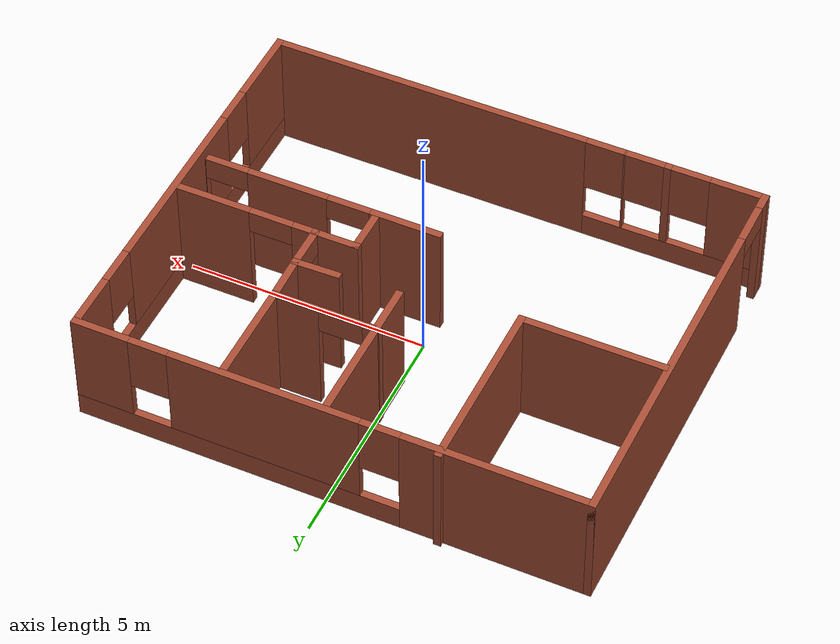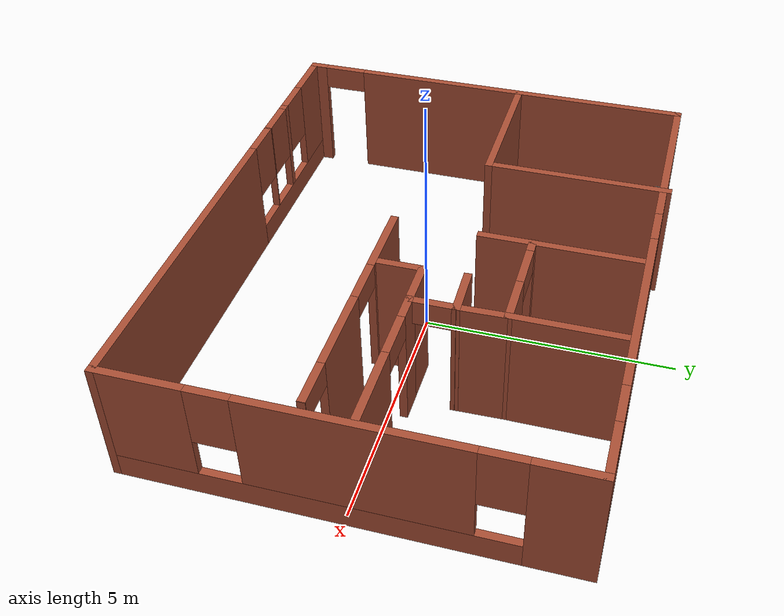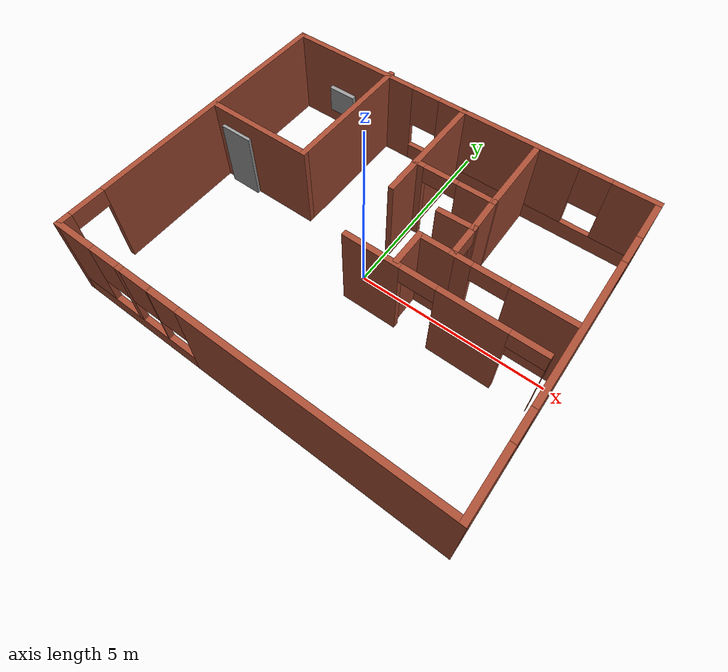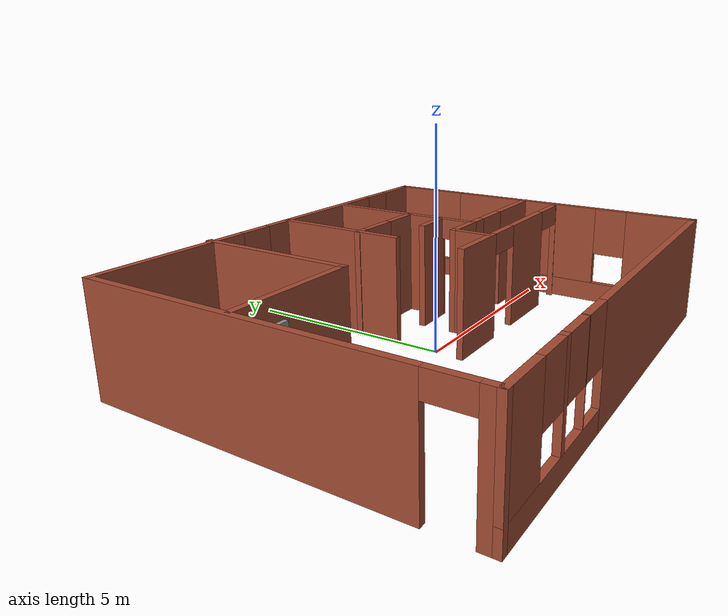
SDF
<?xml version='1.0'?>
<sdf version='1.7'>
  <model name='map2'>
    <pose>-0.063504 0.059029 0 0 -0 0</pose>
    <link name='Door_1'>
      <collision name='Door_1_Collision'>
        <geometry>
          <box>
            <size>0.9 0.17 2</size>
          </box>
        </geometry>
        <pose>0 0 1 0 -0 0</pose>
      </collision>
      <visual name='Door_1_Visual'>
        <pose>0 0 1 0 -0 0</pose>
        <geometry>
          <box>
            <size>0.9 0.17 2</size>
          </box>
        </geometry>
        <material>
          <script>
            <uri>file://media/materials/scripts/gazebo.material</uri>
            <name>Gazebo/Grey</name>
          </script>
        </material>
      </visual>
      <pose>-4.41169 0.543495 0 0 -0 0</pose>
    </link>
    <link name='Wall_0'>
      <pose>0 4.12874 0 0 -0 0</pose>
      <visual name='Wall_0_Visual_0'>
        <pose>-3.34231 0 1.25 0 -0 0</pose>
        <geometry>
          <box>
            <size>3.81538 0.15 2.5</size>
          </box>
        </geometry>
        <material>
          <script>
            <uri>file://media/materials/scripts/gazebo.material</uri>
            <name>Gazebo/Bricks</name>
          </script>
          <ambient>1 1 1 1</ambient>
        </material>
        <meta>
          <layer>0</layer>
        </meta>
      </visual>
      <collision name='Wall_0_Collision_0'>
        <geometry>
          <box>
            <size>3.81538 0.15 2.5</size>
          </box>
        </geometry>
        <pose>-3.34231 0 1.25 0 -0 0</pose>
      </collision>
      <visual name='Wall_0_Visual_1'>
        <pose>1.90769 0 0.25 0 -0 0</pose>
        <geometry>
          <box>
            <size>6.68462 0.15 0.5</size>
          </box>
        </geometry>
        <material>
          <script>
            <uri>file://media/materials/scripts/gazebo.material</uri>
            <name>Gazebo/Bricks</name>
          </script>
          <ambient>1 1 1 1</ambient>
        </material>
        <meta>
          <layer>0</layer>
        </meta>
      </visual>
      <collision name='Wall_0_Collision_1'>
        <geometry>
          <box>
            <size>6.68462 0.15 0.5</size>
          </box>
        </geometry>
        <pose>1.90769 0 0.25 0 -0 0</pose>
      </collision>
      <visual name='Wall_0_Visual_2'>
        <pose>1.31313 0 1.5 0 -0 0</pose>
        <geometry>
          <box>
            <size>3.89551 0.15 2</size>
          </box>
        </geometry>
        <material>
          <script>
            <uri>file://media/materials/scripts/gazebo.material</uri>
            <name>Gazebo/Bricks</name>
          </script>
          <ambient>1 1 1 1</ambient>
        </material>
        <meta>
          <layer>0</layer>
        </meta>
      </visual>
      <collision name='Wall_0_Collision_2'>
        <geometry>
          <box>
            <size>3.89551 0.15 2</size>
          </box>
        </geometry>
        <pose>1.31313 0 1.5 0 -0 0</pose>
      </collision>
      <visual name='Wall_0_Visual_3'>
        <pose>4.65545 0 1.5 0 -0 0</pose>
        <geometry>
          <box>
            <size>1.18911 0.15 2</size>
          </box>
        </geometry>
        <material>
          <script>
            <uri>file://media/materials/scripts/gazebo.material</uri>
            <name>Gazebo/Bricks</name>
          </script>
          <ambient>1 1 1 1</ambient>
        </material>
        <meta>
          <layer>0</layer>
        </meta>
      </visual>
      <collision name='Wall_0_Collision_3'>
        <geometry>
          <box>
            <size>1.18911 0.15 2</size>
          </box>
        </geometry>
        <pose>4.65545 0 1.5 0 -0 0</pose>
      </collision>
      <visual name='Wall_0_Visual_4'>
        <pose>-1.03462 0 1.9 0 -0 0</pose>
        <geometry>
          <box>
            <size>0.8 0.15 1.2</size>
          </box>
        </geometry>
        <material>
          <script>
            <uri>file://media/materials/scripts/gazebo.material</uri>
            <name>Gazebo/Bricks</name>
          </script>
          <ambient>1 1 1 1</ambient>
        </material>
        <meta>
          <layer>0</layer>
        </meta>
      </visual>
      <collision name='Wall_0_Collision_4'>
        <geometry>
          <box>
            <size>0.8 0.15 1.2</size>
          </box>
        </geometry>
        <pose>-1.03462 0 1.9 0 -0 0</pose>
      </collision>
      <visual name='Wall_0_Visual_5'>
        <pose>3.66089 0 1.9 0 -0 0</pose>
        <geometry>
          <box>
            <size>0.8 0.15 1.2</size>
          </box>
        </geometry>
        <material>
          <script>
            <uri>file://media/materials/scripts/gazebo.material</uri>
            <name>Gazebo/Bricks</name>
          </script>
          <ambient>1 1 1 1</ambient>
        </material>
        <meta>
          <layer>0</layer>
        </meta>
      </visual>
      <collision name='Wall_0_Collision_5'>
        <geometry>
          <box>
            <size>0.8 0.15 1.2</size>
          </box>
        </geometry>
        <pose>3.66089 0 1.9 0 -0 0</pose>
      </collision>
    </link>
    <link name='Wall_1'>
      <pose>5.175 -0.046261 0 0 -0 -1.5708</pose>
      <visual name='Wall_1_Visual_0'>
        <pose>-3.63762 0 1.25 0 -0 0</pose>
        <geometry>
          <box>
            <size>1.22475 0.15 2.5</size>
          </box>
        </geometry>
        <material>
          <script>
            <uri>file://media/materials/scripts/gazebo.material</uri>
            <name>Gazebo/Bricks</name>
          </script>
          <ambient>1 1 1 1</ambient>
        </material>
        <meta>
          <layer>0</layer>
        </meta>
      </visual>
      <collision name='Wall_1_Collision_0'>
        <geometry>
          <box>
            <size>1.22475 0.15 2.5</size>
          </box>
        </geometry>
        <pose>-3.63762 0 1.25 0 -0 0</pose>
      </collision>
      <visual name='Wall_1_Visual_1'>
        <pose>0.612375 0 0.25 0 -0 0</pose>
        <geometry>
          <box>
            <size>7.27525 0.15 0.5</size>
          </box>
        </geometry>
        <material>
          <script>
            <uri>file://media/materials/scripts/gazebo.material</uri>
            <name>Gazebo/Bricks</name>
          </script>
          <ambient>1 1 1 1</ambient>
        </material>
        <meta>
          <layer>0</layer>
        </meta>
      </visual>
      <collision name='Wall_1_Collision_1'>
        <geometry>
          <box>
            <size>7.27525 0.15 0.5</size>
          </box>
        </geometry>
        <pose>0.612375 0 0.25 0 -0 0</pose>
      </collision>
      <visual name='Wall_1_Visual_2'>
        <pose>-0.231231 0 1.5 0 -0 0</pose>
        <geometry>
          <box>
            <size>3.98804 0.15 2</size>
          </box>
        </geometry>
        <material>
          <script>
            <uri>file://media/materials/scripts/gazebo.material</uri>
            <name>Gazebo/Bricks</name>
          </script>
          <ambient>1 1 1 1</ambient>
        </material>
        <meta>
          <layer>0</layer>
        </meta>
      </visual>
      <collision name='Wall_1_Collision_2'>
        <geometry>
          <box>
            <size>3.98804 0.15 2</size>
          </box>
        </geometry>
        <pose>-0.231231 0 1.5 0 -0 0</pose>
      </collision>
      <visual name='Wall_1_Visual_3'>
        <pose>3.40639 0 1.5 0 -0 0</pose>
        <geometry>
          <box>
            <size>1.68721 0.15 2</size>
          </box>
        </geometry>
        <material>
          <script>
            <uri>file://media/materials/scripts/gazebo.material</uri>
            <name>Gazebo/Bricks</name>
          </script>
          <ambient>1 1 1 1</ambient>
        </material>
        <meta>
          <layer>0</layer>
        </meta>
      </visual>
      <collision name='Wall_1_Collision_3'>
        <geometry>
          <box>
            <size>1.68721 0.15 2</size>
          </box>
        </geometry>
        <pose>3.40639 0 1.5 0 -0 0</pose>
      </collision>
      <visual name='Wall_1_Visual_4'>
        <pose>-2.62525 0 1.9 0 -0 0</pose>
        <geometry>
          <box>
            <size>0.8 0.15 1.2</size>
          </box>
        </geometry>
        <material>
          <script>
            <uri>file://media/materials/scripts/gazebo.material</uri>
            <name>Gazebo/Bricks</name>
          </script>
          <ambient>1 1 1 1</ambient>
        </material>
        <meta>
          <layer>0</layer>
        </meta>
      </visual>
      <collision name='Wall_1_Collision_4'>
        <geometry>
          <box>
            <size>0.8 0.15 1.2</size>
          </box>
        </geometry>
        <pose>-2.62525 0 1.9 0 -0 0</pose>
      </collision>
      <visual name='Wall_1_Visual_5'>
        <pose>2.16279 0 1.9 0 -0 0</pose>
        <geometry>
          <box>
            <size>0.8 0.15 1.2</size>
          </box>
        </geometry>
        <material>
          <script>
            <uri>file://media/materials/scripts/gazebo.material</uri>
            <name>Gazebo/Bricks</name>
          </script>
          <ambient>1 1 1 1</ambient>
        </material>
        <meta>
          <layer>0</layer>
        </meta>
      </visual>
      <collision name='Wall_1_Collision_5'>
        <geometry>
          <box>
            <size>0.8 0.15 1.2</size>
          </box>
        </geometry>
        <pose>2.16279 0 1.9 0 -0 0</pose>
      </collision>
    </link>
    <link name='Wall_11'>
      <collision name='Wall_11_Collision'>
        <geometry>
          <box>
            <size>2.25 0.15 2.5</size>
          </box>
        </geometry>
        <pose>0 0 1.25 0 -0 0</pose>
      </collision>
      <visual name='Wall_11_Visual'>
        <pose>0 0 1.25 0 -0 0</pose>
        <geometry>
          <box>
            <size>2.25 0.15 2.5</size>
          </box>
        </geometry>
        <material>
          <script>
            <uri>file://media/materials/scripts/gazebo.material</uri>
            <name>Gazebo/Bricks</name>
          </script>
          <ambient>1 1 1 1</ambient>
        </material>
        <meta>
          <layer>0</layer>
        </meta>
      </visual>
      <pose>2.1574 3.03248 0 0 -0 -1.5708</pose>
    </link>
    <link name='Wall_12'>
      <pose>1.1074 1.98248 0 0 -0 3.14159</pose>
      <visual name='Wall_12_Visual_0'>
        <pose>-0.618582 0 1.25 0 -0 0</pose>
        <geometry>
          <box>
            <size>1.01284 0.15 2.5</size>
          </box>
        </geometry>
        <material>
          <script>
            <uri>file://media/materials/scripts/gazebo.material</uri>
            <name>Gazebo/Bricks</name>
          </script>
          <ambient>1 1 1 1</ambient>
        </material>
        <meta>
          <layer>0</layer>
        </meta>
      </visual>
      <collision name='Wall_12_Collision_0'>
        <geometry>
          <box>
            <size>1.01284 0.15 2.5</size>
          </box>
        </geometry>
        <pose>-0.618582 0 1.25 0 -0 0</pose>
      </collision>
      <visual name='Wall_12_Visual_1'>
        <pose>0.956418 0 1.25 0 -0 0</pose>
        <geometry>
          <box>
            <size>0.337163 0.15 2.5</size>
          </box>
        </geometry>
        <material>
          <script>
            <uri>file://media/materials/scripts/gazebo.material</uri>
            <name>Gazebo/Bricks</name>
          </script>
          <ambient>1 1 1 1</ambient>
        </material>
        <meta>
          <layer>0</layer>
        </meta>
      </visual>
      <collision name='Wall_12_Collision_1'>
        <geometry>
          <box>
            <size>0.337163 0.15 2.5</size>
          </box>
        </geometry>
        <pose>0.956418 0 1.25 0 -0 0</pose>
      </collision>
      <visual name='Wall_12_Visual_2'>
        <pose>0.337837 0 2.25 0 -0 0</pose>
        <geometry>
          <box>
            <size>0.9 0.15 0.5</size>
          </box>
        </geometry>
        <material>
          <script>
            <uri>file://media/materials/scripts/gazebo.material</uri>
            <name>Gazebo/Bricks</name>
          </script>
          <ambient>1 1 1 1</ambient>
        </material>
        <meta>
          <layer>0</layer>
        </meta>
      </visual>
      <collision name='Wall_12_Collision_2'>
        <geometry>
          <box>
            <size>0.9 0.15 0.5</size>
          </box>
        </geometry>
        <pose>0.337837 0 2.25 0 -0 0</pose>
      </collision>
    </link>
    <link name='Wall_14'>
      <pose>2.47752 -0.705558 0 0 -0 0</pose>
      <visual name='Wall_14_Visual_0'>
        <pose>-1.75071 0 1.25 0 -0 0</pose>
        <geometry>
          <box>
            <size>1.49858 0.15 2.5</size>
          </box>
        </geometry>
        <material>
          <script>
            <uri>file://media/materials/scripts/gazebo.material</uri>
            <name>Gazebo/Bricks</name>
          </script>
          <ambient>1 1 1 1</ambient>
        </material>
        <meta>
          <layer>0</layer>
        </meta>
      </visual>
      <collision name='Wall_14_Collision_0'>
        <geometry>
          <box>
            <size>1.49858 0.15 2.5</size>
          </box>
        </geometry>
        <pose>-1.75071 0 1.25 0 -0 0</pose>
      </collision>
      <visual name='Wall_14_Visual_1'>
        <pose>0.743893 0 1.25 0 -0 0</pose>
        <geometry>
          <box>
            <size>1.69063 0.15 2.5</size>
          </box>
        </geometry>
        <material>
          <script>
            <uri>file://media/materials/scripts/gazebo.material</uri>
            <name>Gazebo/Bricks</name>
          </script>
          <ambient>1 1 1 1</ambient>
        </material>
        <meta>
          <layer>0</layer>
        </meta>
      </visual>
      <collision name='Wall_14_Collision_1'>
        <geometry>
          <box>
            <size>1.69063 0.15 2.5</size>
          </box>
        </geometry>
        <pose>0.743893 0 1.25 0 -0 0</pose>
      </collision>
      <visual name='Wall_14_Visual_2'>
        <pose>2.4946 0 1.25 0 -0 0</pose>
        <geometry>
          <box>
            <size>0.010793 0.15 2.5</size>
          </box>
        </geometry>
        <material>
          <script>
            <uri>file://media/materials/scripts/gazebo.material</uri>
            <name>Gazebo/Bricks</name>
          </script>
          <ambient>1 1 1 1</ambient>
        </material>
        <meta>
          <layer>0</layer>
        </meta>
      </visual>
      <collision name='Wall_14_Collision_2'>
        <geometry>
          <box>
            <size>0.010793 0.15 2.5</size>
          </box>
        </geometry>
        <pose>2.4946 0 1.25 0 -0 0</pose>
      </collision>
      <visual name='Wall_14_Visual_3'>
        <pose>-0.551421 0 2.25 0 -0 0</pose>
        <geometry>
          <box>
            <size>0.9 0.15 0.5</size>
          </box>
        </geometry>
        <material>
          <script>
            <uri>file://media/materials/scripts/gazebo.material</uri>
            <name>Gazebo/Bricks</name>
          </script>
          <ambient>1 1 1 1</ambient>
        </material>
        <meta>
          <layer>0</layer>
        </meta>
      </visual>
      <collision name='Wall_14_Collision_3'>
        <geometry>
          <box>
            <size>0.9 0.15 0.5</size>
          </box>
        </geometry>
        <pose>-0.551421 0 2.25 0 -0 0</pose>
      </collision>
      <visual name='Wall_14_Visual_4'>
        <pose>2.03921 0 2.25 0 -0 0</pose>
        <geometry>
          <box>
            <size>0.9 0.15 0.5</size>
          </box>
        </geometry>
        <material>
          <script>
            <uri>file://media/materials/scripts/gazebo.material</uri>
            <name>Gazebo/Bricks</name>
          </script>
          <ambient>1 1 1 1</ambient>
        </material>
        <meta>
          <layer>0</layer>
        </meta>
      </visual>
      <collision name='Wall_14_Collision_4'>
        <geometry>
          <box>
            <size>0.9 0.15 0.5</size>
          </box>
        </geometry>
        <pose>2.03921 0 2.25 0 -0 0</pose>
      </collision>
    </link>
    <link name='Wall_16'>
      <pose>2.18053 0.650499 0 0 -0 -1.5708</pose>
      <visual name='Wall_16_Visual_0'>
        <pose>-0.467759 0 1.25 0 -0 0</pose>
        <geometry>
          <box>
            <size>0.064482 0.15 2.5</size>
          </box>
        </geometry>
        <material>
          <script>
            <uri>file://media/materials/scripts/gazebo.material</uri>
            <name>Gazebo/Bricks</name>
          </script>
          <ambient>1 1 1 1</ambient>
        </material>
        <meta>
          <layer>0</layer>
        </meta>
      </visual>
      <collision name='Wall_16_Collision_0'>
        <geometry>
          <box>
            <size>0.064482 0.15 2.5</size>
          </box>
        </geometry>
        <pose>-0.467759 0 1.25 0 -0 0</pose>
      </collision>
      <visual name='Wall_16_Visual_1'>
        <pose>0.482241 0 1.25 0 -0 0</pose>
        <geometry>
          <box>
            <size>0.035518 0.15 2.5</size>
          </box>
        </geometry>
        <material>
          <script>
            <uri>file://media/materials/scripts/gazebo.material</uri>
            <name>Gazebo/Bricks</name>
          </script>
          <ambient>1 1 1 1</ambient>
        </material>
        <meta>
          <layer>0</layer>
        </meta>
      </visual>
      <collision name='Wall_16_Collision_1'>
        <geometry>
          <box>
            <size>0.035518 0.15 2.5</size>
          </box>
        </geometry>
        <pose>0.482241 0 1.25 0 -0 0</pose>
      </collision>
      <visual name='Wall_16_Visual_2'>
        <pose>0.014482 0 2.25 0 -0 0</pose>
        <geometry>
          <box>
            <size>0.9 0.15 0.5</size>
          </box>
        </geometry>
        <material>
          <script>
            <uri>file://media/materials/scripts/gazebo.material</uri>
            <name>Gazebo/Bricks</name>
          </script>
          <ambient>1 1 1 1</ambient>
        </material>
        <meta>
          <layer>0</layer>
        </meta>
      </visual>
      <collision name='Wall_16_Collision_2'>
        <geometry>
          <box>
            <size>0.9 0.15 0.5</size>
          </box>
        </geometry>
        <pose>0.014482 0 2.25 0 -0 0</pose>
      </collision>
    </link>
    <link name='Wall_18'>
      <pose>3.60553 0.225499 0 0 -0 0</pose>
      <visual name='Wall_18_Visual_0'>
        <pose>-1.22489 0 1.25 0 -0 0</pose>
        <geometry>
          <box>
            <size>0.550224 0.15 2.5</size>
          </box>
        </geometry>
        <material>
          <script>
            <uri>file://media/materials/scripts/gazebo.material</uri>
            <name>Gazebo/Bricks</name>
          </script>
          <ambient>1 1 1 1</ambient>
        </material>
        <meta>
          <layer>0</layer>
        </meta>
      </visual>
      <collision name='Wall_18_Collision_0'>
        <geometry>
          <box>
            <size>0.550224 0.15 2.5</size>
          </box>
        </geometry>
        <pose>-1.22489 0 1.25 0 -0 0</pose>
      </collision>
      <visual name='Wall_18_Visual_1'>
        <pose>0.725112 0 1.25 0 -0 0</pose>
        <geometry>
          <box>
            <size>1.54978 0.15 2.5</size>
          </box>
        </geometry>
        <material>
          <script>
            <uri>file://media/materials/scripts/gazebo.material</uri>
            <name>Gazebo/Bricks</name>
          </script>
          <ambient>1 1 1 1</ambient>
        </material>
        <meta>
          <layer>0</layer>
        </meta>
      </visual>
      <collision name='Wall_18_Collision_1'>
        <geometry>
          <box>
            <size>1.54978 0.15 2.5</size>
          </box>
        </geometry>
        <pose>0.725112 0 1.25 0 -0 0</pose>
      </collision>
      <visual name='Wall_18_Visual_2'>
        <pose>-0.499776 0 2.25 0 -0 0</pose>
        <geometry>
          <box>
            <size>0.9 0.15 0.5</size>
          </box>
        </geometry>
        <material>
          <script>
            <uri>file://media/materials/scripts/gazebo.material</uri>
            <name>Gazebo/Bricks</name>
          </script>
          <ambient>1 1 1 1</ambient>
        </material>
        <meta>
          <layer>0</layer>
        </meta>
      </visual>
      <collision name='Wall_18_Collision_2'>
        <geometry>
          <box>
            <size>0.9 0.15 0.5</size>
          </box>
        </geometry>
        <pose>-0.499776 0 2.25 0 -0 0</pose>
      </collision>
    </link>
    <link name='Wall_20'>
      <collision name='Wall_20_Collision'>
        <geometry>
          <box>
            <size>1.05727 0.15 2.5</size>
          </box>
        </geometry>
        <pose>0 0 1.25 0 -0 0</pose>
      </collision>
      <visual name='Wall_20_Visual'>
        <pose>0 0 1.25 0 -0 0</pose>
        <geometry>
          <box>
            <size>1.05727 0.15 2.5</size>
          </box>
        </geometry>
        <material>
          <script>
            <uri>file://media/materials/scripts/gazebo.material</uri>
            <name>Gazebo/Bricks</name>
          </script>
          <ambient>1 1 1 1</ambient>
        </material>
        <meta>
          <layer>0</layer>
        </meta>
      </visual>
      <pose>2.16897 1.52899 0 0 -0 1.59629</pose>
    </link>
    <link name='Wall_22'>
      <collision name='Wall_22_Collision'>
        <geometry>
          <box>
            <size>1.00615 0.15 2.5</size>
          </box>
        </geometry>
        <pose>0 0 1.25 0 -0 0</pose>
      </collision>
      <visual name='Wall_22_Visual'>
        <pose>0 0 1.25 0 -0 0</pose>
        <geometry>
          <box>
            <size>1.00615 0.15 2.5</size>
          </box>
        </geometry>
        <material>
          <script>
            <uri>file://media/materials/scripts/gazebo.material</uri>
            <name>Gazebo/Bricks</name>
          </script>
          <ambient>1 1 1 1</ambient>
        </material>
        <meta>
          <layer>0</layer>
        </meta>
      </visual>
      <pose>1.75262 1.06393 0 0 -0 0.02702</pose>
    </link>
    <link name='Wall_24'>
      <collision name='Wall_24_Collision'>
        <geometry>
          <box>
            <size>1 0.15 2.5</size>
          </box>
        </geometry>
        <pose>0 0 1.25 0 -0 0</pose>
      </collision>
      <visual name='Wall_24_Visual'>
        <pose>0 0 1.25 0 -0 0</pose>
        <geometry>
          <box>
            <size>1 0.15 2.5</size>
          </box>
        </geometry>
        <material>
          <script>
            <uri>file://media/materials/scripts/gazebo.material</uri>
            <name>Gazebo/Bricks</name>
          </script>
          <ambient>1 1 1 1</ambient>
        </material>
        <meta>
          <layer>0</layer>
        </meta>
      </visual>
      <pose>1.75553 0.225499 0 0 -0 3.14159</pose>
    </link>
    <link name='Wall_25'>
      <collision name='Wall_25_Collision'>
        <geometry>
          <box>
            <size>1 0.15 2.5</size>
          </box>
        </geometry>
        <pose>0 0 1.25 0 -0 0</pose>
      </collision>
      <visual name='Wall_25_Visual'>
        <pose>0 0 1.25 0 -0 0</pose>
        <geometry>
          <box>
            <size>1 0.15 2.5</size>
          </box>
        </geometry>
        <material>
          <script>
            <uri>file://media/materials/scripts/gazebo.material</uri>
            <name>Gazebo/Bricks</name>
          </script>
          <ambient>1 1 1 1</ambient>
        </material>
        <meta>
          <layer>0</layer>
        </meta>
      </visual>
      <pose>1.33053 -0.199501 0 0 -0 -1.5708</pose>
    </link>
    <link name='Wall_3'>
      <pose>0 -4.22126 0 0 -0 3.14159</pose>
      <visual name='Wall_3_Visual_0'>
        <pose>-1.87977 0 1.25 0 -0 0</pose>
        <geometry>
          <box>
            <size>6.74045 0.15 2.5</size>
          </box>
        </geometry>
        <material>
          <script>
            <uri>file://media/materials/scripts/gazebo.material</uri>
            <name>Gazebo/Bricks</name>
          </script>
          <ambient>1 1 1 1</ambient>
        </material>
        <meta>
          <layer>0</layer>
        </meta>
      </visual>
      <collision name='Wall_3_Collision_0'>
        <geometry>
          <box>
            <size>6.74045 0.15 2.5</size>
          </box>
        </geometry>
        <pose>-1.87977 0 1.25 0 -0 0</pose>
      </collision>
      <visual name='Wall_3_Visual_1'>
        <pose>3.37023 0 0.25 0 -0 0</pose>
        <geometry>
          <box>
            <size>3.75955 0.15 0.5</size>
          </box>
        </geometry>
        <material>
          <script>
            <uri>file://media/materials/scripts/gazebo.material</uri>
            <name>Gazebo/Bricks</name>
          </script>
          <ambient>1 1 1 1</ambient>
        </material>
        <meta>
          <layer>0</layer>
        </meta>
      </visual>
      <collision name='Wall_3_Collision_1'>
        <geometry>
          <box>
            <size>3.75955 0.15 0.5</size>
          </box>
        </geometry>
        <pose>3.37023 0 0.25 0 -0 0</pose>
      </collision>
      <visual name='Wall_3_Visual_2'>
        <pose>2.30681 0 1.5 0 -0 0</pose>
        <geometry>
          <box>
            <size>0.032702 0.15 2</size>
          </box>
        </geometry>
        <material>
          <script>
            <uri>file://media/materials/scripts/gazebo.material</uri>
            <name>Gazebo/Bricks</name>
          </script>
          <ambient>1 1 1 1</ambient>
        </material>
        <meta>
          <layer>0</layer>
        </meta>
      </visual>
      <collision name='Wall_3_Collision_2'>
        <geometry>
          <box>
            <size>0.032702 0.15 2</size>
          </box>
        </geometry>
        <pose>2.30681 0 1.5 0 -0 0</pose>
      </collision>
      <visual name='Wall_3_Visual_3'>
        <pose>3.19733 0 1.5 0 -0 0</pose>
        <geometry>
          <box>
            <size>0.148355 0.15 2</size>
          </box>
        </geometry>
        <material>
          <script>
            <uri>file://media/materials/scripts/gazebo.material</uri>
            <name>Gazebo/Bricks</name>
          </script>
          <ambient>1 1 1 1</ambient>
        </material>
        <meta>
          <layer>0</layer>
        </meta>
      </visual>
      <collision name='Wall_3_Collision_3'>
        <geometry>
          <box>
            <size>0.148355 0.15 2</size>
          </box>
        </geometry>
        <pose>3.19733 0 1.5 0 -0 0</pose>
      </collision>
      <visual name='Wall_3_Visual_4'>
        <pose>4.66075 0 1.5 0 -0 0</pose>
        <geometry>
          <box>
            <size>1.17849 0.15 2</size>
          </box>
        </geometry>
        <material>
          <script>
            <uri>file://media/materials/scripts/gazebo.material</uri>
            <name>Gazebo/Bricks</name>
          </script>
          <ambient>1 1 1 1</ambient>
        </material>
        <meta>
          <layer>0</layer>
        </meta>
      </visual>
      <collision name='Wall_3_Collision_4'>
        <geometry>
          <box>
            <size>1.17849 0.15 2</size>
          </box>
        </geometry>
        <pose>4.66075 0 1.5 0 -0 0</pose>
      </collision>
      <visual name='Wall_3_Visual_5'>
        <pose>1.89045 0 1.9 0 -0 0</pose>
        <geometry>
          <box>
            <size>0.8 0.15 1.2</size>
          </box>
        </geometry>
        <material>
          <script>
            <uri>file://media/materials/scripts/gazebo.material</uri>
            <name>Gazebo/Bricks</name>
          </script>
          <ambient>1 1 1 1</ambient>
        </material>
        <meta>
          <layer>0</layer>
        </meta>
      </visual>
      <collision name='Wall_3_Collision_5'>
        <geometry>
          <box>
            <size>0.8 0.15 1.2</size>
          </box>
        </geometry>
        <pose>1.89045 0 1.9 0 -0 0</pose>
      </collision>
      <visual name='Wall_3_Visual_6'>
        <pose>2.72316 0 1.9 0 -0 0</pose>
        <geometry>
          <box>
            <size>0.8 0.15 1.2</size>
          </box>
        </geometry>
        <material>
          <script>
            <uri>file://media/materials/scripts/gazebo.material</uri>
            <name>Gazebo/Bricks</name>
          </script>
          <ambient>1 1 1 1</ambient>
        </material>
        <meta>
          <layer>0</layer>
        </meta>
      </visual>
      <collision name='Wall_3_Collision_6'>
        <geometry>
          <box>
            <size>0.8 0.15 1.2</size>
          </box>
        </geometry>
        <pose>2.72316 0 1.9 0 -0 0</pose>
      </collision>
      <visual name='Wall_3_Visual_7'>
        <pose>3.67151 0 1.9 0 -0 0</pose>
        <geometry>
          <box>
            <size>0.8 0.15 1.2</size>
          </box>
        </geometry>
        <material>
          <script>
            <uri>file://media/materials/scripts/gazebo.material</uri>
            <name>Gazebo/Bricks</name>
          </script>
          <ambient>1 1 1 1</ambient>
        </material>
        <meta>
          <layer>0</layer>
        </meta>
      </visual>
      <collision name='Wall_3_Collision_7'>
        <geometry>
          <box>
            <size>0.8 0.15 1.2</size>
          </box>
        </geometry>
        <pose>3.67151 0 1.9 0 -0 0</pose>
      </collision>
    </link>
    <link name='Wall_4'>
      <pose>-5.175 -0.046261 0 0 -0 1.5708</pose>
      <visual name='Wall_4_Visual_0'>
        <pose>-4.05592 0 1.25 0 -0 0</pose>
        <geometry>
          <box>
            <size>0.388161 0.15 2.5</size>
          </box>
        </geometry>
        <material>
          <script>
            <uri>file://media/materials/scripts/gazebo.material</uri>
            <name>Gazebo/Bricks</name>
          </script>
          <ambient>1 1 1 1</ambient>
        </material>
        <meta>
          <layer>0</layer>
        </meta>
      </visual>
      <collision name='Wall_4_Collision_0'>
        <geometry>
          <box>
            <size>0.388161 0.15 2.5</size>
          </box>
        </geometry>
        <pose>-4.05592 0 1.25 0 -0 0</pose>
      </collision>
      <visual name='Wall_4_Visual_1'>
        <pose>0.64408 0 1.25 0 -0 0</pose>
        <geometry>
          <box>
            <size>7.21184 0.15 2.5</size>
          </box>
        </geometry>
        <material>
          <script>
            <uri>file://media/materials/scripts/gazebo.material</uri>
            <name>Gazebo/Bricks</name>
          </script>
          <ambient>1 1 1 1</ambient>
        </material>
        <meta>
          <layer>0</layer>
        </meta>
      </visual>
      <collision name='Wall_4_Collision_1'>
        <geometry>
          <box>
            <size>7.21184 0.15 2.5</size>
          </box>
        </geometry>
        <pose>0.64408 0 1.25 0 -0 0</pose>
      </collision>
      <visual name='Wall_4_Visual_2'>
        <pose>-3.41184 0 2.25 0 -0 0</pose>
        <geometry>
          <box>
            <size>0.9 0.15 0.5</size>
          </box>
        </geometry>
        <material>
          <script>
            <uri>file://media/materials/scripts/gazebo.material</uri>
            <name>Gazebo/Bricks</name>
          </script>
          <ambient>1 1 1 1</ambient>
        </material>
        <meta>
          <layer>0</layer>
        </meta>
      </visual>
      <collision name='Wall_4_Collision_2'>
        <geometry>
          <box>
            <size>0.9 0.15 0.5</size>
          </box>
        </geometry>
        <pose>-3.41184 0 2.25 0 -0 0</pose>
      </collision>
    </link>
    <link name='Wall_6'>
      <collision name='Wall_6_Collision'>
        <geometry>
          <box>
            <size>3.75 0.15 2.5</size>
          </box>
        </geometry>
        <pose>0 0 1.25 0 -0 0</pose>
      </collision>
      <visual name='Wall_6_Visual'>
        <pose>0 0 1.25 0 -0 0</pose>
        <geometry>
          <box>
            <size>3.75 0.15 2.5</size>
          </box>
        </geometry>
        <material>
          <script>
            <uri>file://media/materials/scripts/gazebo.material</uri>
            <name>Gazebo/Bricks</name>
          </script>
          <ambient>1 1 1 1</ambient>
        </material>
        <meta>
          <layer>0</layer>
        </meta>
      </visual>
      <pose>-2.23741 2.42126 0 0 -0 -1.5708</pose>
    </link>
    <link name='Wall_7'>
      <collision name='Wall_7_Collision'>
        <geometry>
          <box>
            <size>3 0.15 2.5</size>
          </box>
        </geometry>
        <pose>0 0 1.25 0 -0 0</pose>
      </collision>
      <visual name='Wall_7_Visual'>
        <pose>0 0 1.25 0 -0 0</pose>
        <geometry>
          <box>
            <size>3 0.15 2.5</size>
          </box>
        </geometry>
        <material>
          <script>
            <uri>file://media/materials/scripts/gazebo.material</uri>
            <name>Gazebo/Bricks</name>
          </script>
          <ambient>1 1 1 1</ambient>
        </material>
        <meta>
          <layer>0</layer>
        </meta>
      </visual>
      <pose>-3.66241 0.621261 0 0 -0 3.14159</pose>
    </link>
    <link name='Wall_9'>
      <collision name='Wall_9_Collision'>
        <geometry>
          <box>
            <size>3.25 0.15 2.5</size>
          </box>
        </geometry>
        <pose>0 0 1.25 0 -0 0</pose>
      </collision>
      <visual name='Wall_9_Visual'>
        <pose>0 0 1.25 0 -0 0</pose>
        <geometry>
          <box>
            <size>3.25 0.15 2.5</size>
          </box>
        </geometry>
        <material>
          <script>
            <uri>file://media/materials/scripts/gazebo.material</uri>
            <name>Gazebo/Bricks</name>
          </script>
          <ambient>1 1 1 1</ambient>
        </material>
        <meta>
          <layer>0</layer>
        </meta>
      </visual>
      <pose>0.075648 2.55561 0 0 -0 -1.5708</pose>
    </link>
    <link name='Window_5'>
      <collision name='Window_5_Collision'>
        <geometry>
          <box>
            <size>0.8 0.17 0.8</size>
          </box>
        </geometry>
        <pose>0 0 0.4 0 -0 0</pose>
      </collision>
      <visual name='Window_5_Visual'>
        <pose>0 0 0.4 0 -0 0</pose>
        <geometry>
          <box>
            <size>0.8 0.17 0.8</size>
          </box>
        </geometry>
        <material>
          <script>
            <uri>file://media/materials/scripts/gazebo.material</uri>
            <name>Gazebo/Grey</name>
          </script>
        </material>
      </visual>
      <pose>-3.69464 4.01309 0.5 0 -0 0</pose>
    </link>
    <static>1</static>
  </model>
</sdf>
